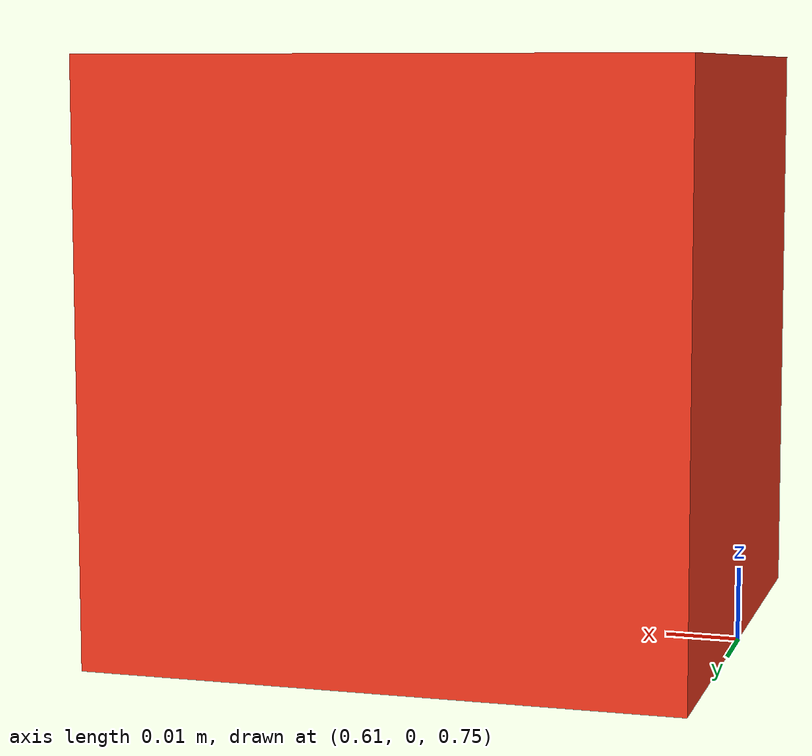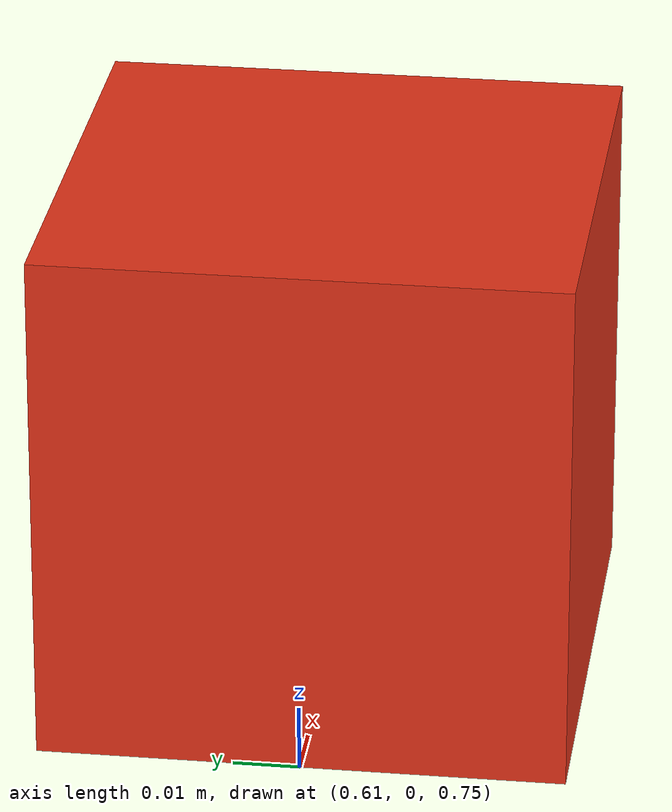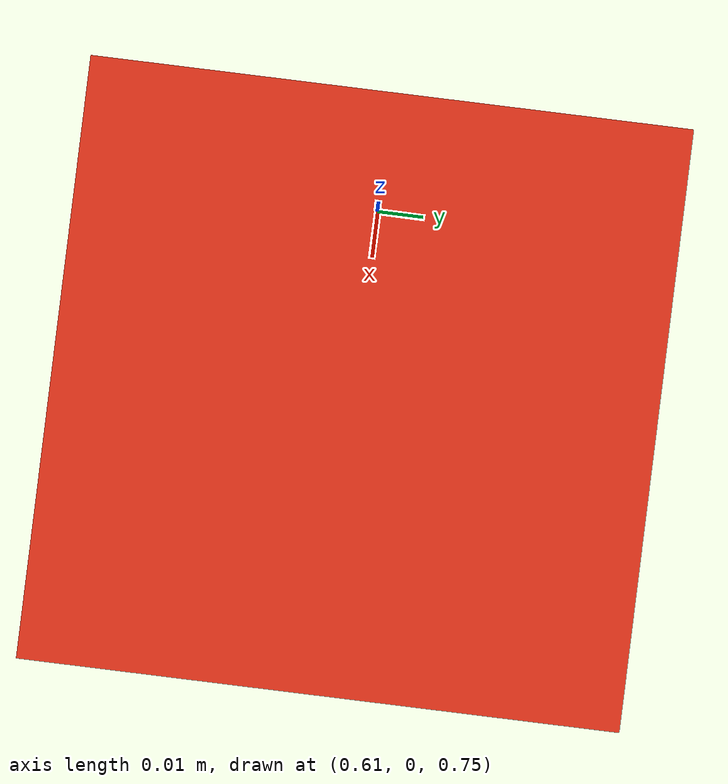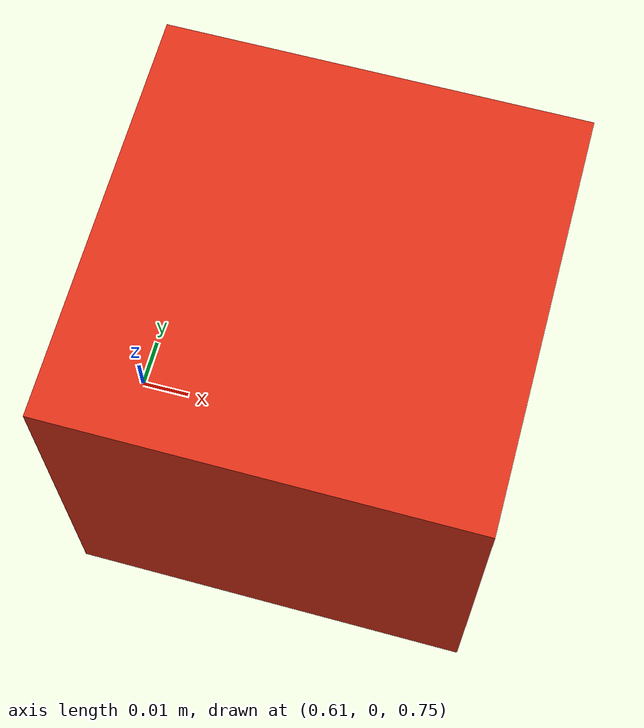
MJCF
<mujoco model="block">
  <worldbody>
    <!-- 8 cm cube sitting on top of the table (z = 0.75 + 0.04 = 0.79) -->
    <body name="block" pos="0.65 0.0 0.79">
      <geom type="box" size="0.04 0.04 0.04"
            rgba="0.9 0.2 0.1 1" mass="0.2" condim="6" friction="1 0.005 0.0001"/>
    </body>
  </worldbody>
</mujoco>
